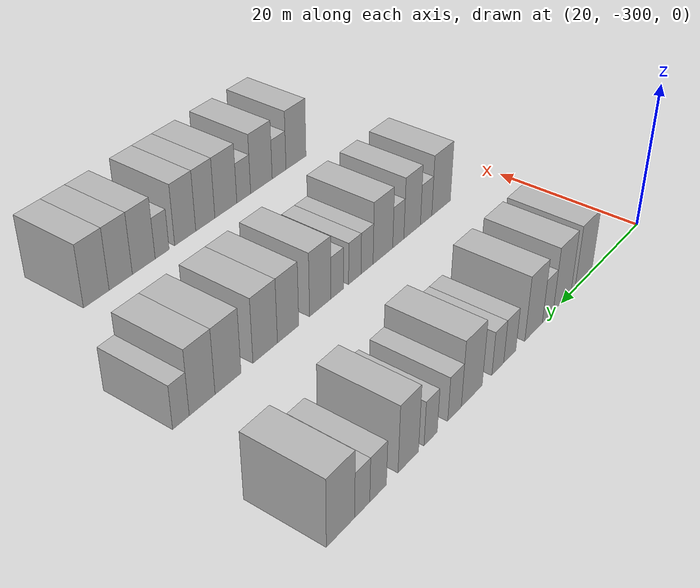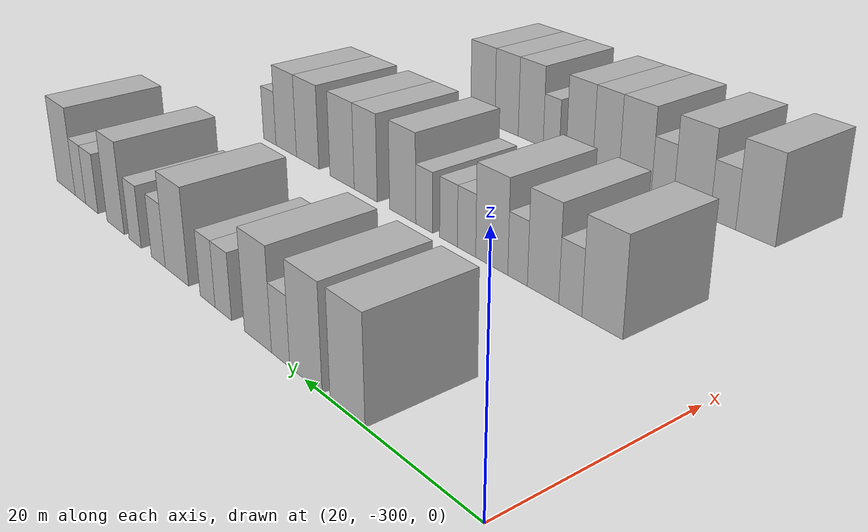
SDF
<sdf version="1.6">
 <world name="default">
  <model name="building_28">
   <static>1</static>
   <pose>25.0000 -285.4052 0 0.000000 0.000000 0.000000</pose>
   <link name="link">
    <pose>0 0 4.50 0 0 0</pose>
    <collision name="collision"><geometry><box><size>10.0000 4.2560 9.0000</size></box></geometry></collision>
    <visual name="visual">
     <cast_shadows>0</cast_shadows>
     <geometry><box><size>10.0000 4.2560 9.0000</size></box></geometry>
     <material>
      <script>
       <uri>model://HANNAS_wall/materials/scripts</uri>
       <uri>model://HANNAS_wall/materials/textures</uri>
       <name>vrc/HANNAS_wall</name>
      </script>
     </material>
    </visual>
   </link>
  </model>
  <model name="building_29">
   <static>1</static>
   <pose>25.0000 -280.1282 0 0.000000 0.000000 0.000000</pose>
   <link name="link">
    <pose>0 0 4.50 0 0 0</pose>
    <collision name="collision"><geometry><box><size>10.0000 4.2981 9.0000</size></box></geometry></collision>
    <visual name="visual">
     <cast_shadows>0</cast_shadows>
     <geometry><box><size>10.0000 4.2981 9.0000</size></box></geometry>
     <material>
      <script>
       <uri>model://HANNAS_wall/materials/scripts</uri>
       <uri>model://HANNAS_wall/materials/textures</uri>
       <name>vrc/HANNAS_wall</name>
      </script>
     </material>
    </visual>
   </link>
  </model>
  <model name="building_30">
   <static>1</static>
   <pose>25.0000 -276.6986 0 0.000000 0.000000 0.000000</pose>
   <link name="link">
    <pose>0 0 3.00 0 0 0</pose>
    <collision name="collision"><geometry><box><size>10.0000 2.5611 6.0000</size></box></geometry></collision>
    <visual name="visual">
     <cast_shadows>0</cast_shadows>
     <geometry><box><size>10.0000 2.5611 6.0000</size></box></geometry>
     <material>
      <script>
       <uri>model://HANNAS_wall/materials/scripts</uri>
       <uri>model://HANNAS_wall/materials/textures</uri>
       <name>vrc/HANNAS_wall</name>
      </script>
     </material>
    </visual>
   </link>
  </model>
  <model name="building_31">
   <static>1</static>
   <pose>25.0000 -273.4115 0 0.000000 0.000000 0.000000</pose>
   <link name="link">
    <pose>0 0 4.50 0 0 0</pose>
    <collision name="collision"><geometry><box><size>10.0000 4.0132 9.0000</size></box></geometry></collision>
    <visual name="visual">
     <cast_shadows>0</cast_shadows>
     <geometry><box><size>10.0000 4.0132 9.0000</size></box></geometry>
     <material>
      <script>
       <uri>model://HANNAS_wall/materials/scripts</uri>
       <uri>model://HANNAS_wall/materials/textures</uri>
       <name>vrc/HANNAS_wall</name>
      </script>
     </material>
    </visual>
   </link>
  </model>
  <model name="building_32">
   <static>1</static>
   <pose>25.0000 -268.0833 0 0.000000 0.000000 0.000000</pose>
   <link name="link">
    <pose>0 0 3.00 0 0 0</pose>
    <collision name="collision"><geometry><box><size>10.0000 2.6431 6.0000</size></box></geometry></collision>
    <visual name="visual">
     <cast_shadows>0</cast_shadows>
     <geometry><box><size>10.0000 2.6431 6.0000</size></box></geometry>
     <material>
      <script>
       <uri>model://HANNAS_wall/materials/scripts</uri>
       <uri>model://HANNAS_wall/materials/textures</uri>
       <name>vrc/HANNAS_wall</name>
      </script>
     </material>
    </visual>
   </link>
  </model>
  <model name="building_33">
   <static>1</static>
   <pose>25.0000 -265.5086 0 0.000000 0.000000 0.000000</pose>
   <link name="link">
    <pose>0 0 3.00 0 0 0</pose>
    <collision name="collision"><geometry><box><size>10.0000 2.5064 6.0000</size></box></geometry></collision>
    <visual name="visual">
     <cast_shadows>0</cast_shadows>
     <geometry><box><size>10.0000 2.5064 6.0000</size></box></geometry>
     <material>
      <script>
       <uri>model://HANNAS_wall/materials/scripts</uri>
       <uri>model://HANNAS_wall/materials/textures</uri>
       <name>vrc/HANNAS_wall</name>
      </script>
     </material>
    </visual>
   </link>
  </model>
  <model name="building_34">
   <static>1</static>
   <pose>25.0000 -260.1540 0 0.000000 0.000000 0.000000</pose>
   <link name="link">
    <pose>0 0 4.50 0 0 0</pose>
    <collision name="collision"><geometry><box><size>10.0000 4.2027 9.0000</size></box></geometry></collision>
    <visual name="visual">
     <cast_shadows>0</cast_shadows>
     <geometry><box><size>10.0000 4.2027 9.0000</size></box></geometry>
     <material>
      <script>
       <uri>model://HANNAS_wall/materials/scripts</uri>
       <uri>model://HANNAS_wall/materials/textures</uri>
       <name>vrc/HANNAS_wall</name>
      </script>
     </material>
    </visual>
   </link>
  </model>
  <model name="building_35">
   <static>1</static>
   <pose>25.0000 -256.7362 0 0.000000 0.000000 0.000000</pose>
   <link name="link">
    <pose>0 0 3.00 0 0 0</pose>
    <collision name="collision"><geometry><box><size>10.0000 2.6328 6.0000</size></box></geometry></collision>
    <visual name="visual">
     <cast_shadows>0</cast_shadows>
     <geometry><box><size>10.0000 2.6328 6.0000</size></box></geometry>
     <material>
      <script>
       <uri>model://HANNAS_wall/materials/scripts</uri>
       <uri>model://HANNAS_wall/materials/textures</uri>
       <name>vrc/HANNAS_wall</name>
      </script>
     </material>
    </visual>
   </link>
  </model>
  <model name="building_36">
   <static>1</static>
   <pose>25.0000 -252.1950 0 0.000000 0.000000 0.000000</pose>
   <link name="link">
    <pose>0 0 3.00 0 0 0</pose>
    <collision name="collision"><geometry><box><size>10.0000 2.4497 6.0000</size></box></geometry></collision>
    <visual name="visual">
     <cast_shadows>0</cast_shadows>
     <geometry><box><size>10.0000 2.4497 6.0000</size></box></geometry>
     <material>
      <script>
       <uri>model://HANNAS_wall/materials/scripts</uri>
       <uri>model://HANNAS_wall/materials/textures</uri>
       <name>vrc/HANNAS_wall</name>
      </script>
     </material>
    </visual>
   </link>
  </model>
  <model name="building_37">
   <static>1</static>
   <pose>25.0000 -248.1479 0 0.000000 0.000000 0.000000</pose>
   <link name="link">
    <pose>0 0 4.50 0 0 0</pose>
    <collision name="collision"><geometry><box><size>10.0000 3.6445 9.0000</size></box></geometry></collision>
    <visual name="visual">
     <cast_shadows>0</cast_shadows>
     <geometry><box><size>10.0000 3.6445 9.0000</size></box></geometry>
     <material>
      <script>
       <uri>model://HANNAS_wall/materials/scripts</uri>
       <uri>model://HANNAS_wall/materials/textures</uri>
       <name>vrc/HANNAS_wall</name>
      </script>
     </material>
    </visual>
   </link>
  </model>
  <model name="building_38">
   <static>1</static>
   <pose>25.0000 -242.9295 0 0.000000 0.000000 0.000000</pose>
   <link name="link">
    <pose>0 0 3.00 0 0 0</pose>
    <collision name="collision"><geometry><box><size>10.0000 2.7922 6.0000</size></box></geometry></collision>
    <visual name="visual">
     <cast_shadows>0</cast_shadows>
     <geometry><box><size>10.0000 2.7922 6.0000</size></box></geometry>
     <material>
      <script>
       <uri>model://HANNAS_wall/materials/scripts</uri>
       <uri>model://HANNAS_wall/materials/textures</uri>
       <name>vrc/HANNAS_wall</name>
      </script>
     </material>
    </visual>
   </link>
  </model>
  <model name="building_39">
   <static>1</static>
   <pose>25.0000 -240.2980 0 0.000000 0.000000 0.000000</pose>
   <link name="link">
    <pose>0 0 3.00 0 0 0</pose>
    <collision name="collision"><geometry><box><size>10.0000 2.4707 6.0000</size></box></geometry></collision>
    <visual name="visual">
     <cast_shadows>0</cast_shadows>
     <geometry><box><size>10.0000 2.4707 6.0000</size></box></geometry>
     <material>
      <script>
       <uri>model://HANNAS_wall/materials/scripts</uri>
       <uri>model://HANNAS_wall/materials/textures</uri>
       <name>vrc/HANNAS_wall</name>
      </script>
     </material>
    </visual>
   </link>
  </model>
  <model name="building_40">
   <static>1</static>
   <pose>25.0000 -236.8393 0 0.000000 0.000000 0.000000</pose>
   <link name="link">
    <pose>0 0 4.50 0 0 0</pose>
    <collision name="collision"><geometry><box><size>10.0000 4.4467 9.0000</size></box></geometry></collision>
    <visual name="visual">
     <cast_shadows>0</cast_shadows>
     <geometry><box><size>10.0000 4.4467 9.0000</size></box></geometry>
     <material>
      <script>
       <uri>model://HANNAS_wall/materials/scripts</uri>
       <uri>model://HANNAS_wall/materials/textures</uri>
       <name>vrc/HANNAS_wall</name>
      </script>
     </material>
    </visual>
   </link>
  </model>
  <model name="building_215">
   <static>1</static>
   <pose>47.0000 -288.3185 0 0.000000 0.000000 0.000000</pose>
   <link name="link">
    <pose>0 0 4.50 0 0 0</pose>
    <collision name="collision"><geometry><box><size>10.0000 4.4186 9.0000</size></box></geometry></collision>
    <visual name="visual">
     <cast_shadows>0</cast_shadows>
     <geometry><box><size>10.0000 4.4186 9.0000</size></box></geometry>
     <material>
      <script>
       <uri>model://HANNAS_wall/materials/scripts</uri>
       <uri>model://HANNAS_wall/materials/textures</uri>
       <name>vrc/HANNAS_wall</name>
      </script>
     </material>
    </visual>
   </link>
  </model>
  <model name="building_216">
   <static>1</static>
   <pose>47.0000 -284.7929 0 0.000000 0.000000 0.000000</pose>
   <link name="link">
    <pose>0 0 3.00 0 0 0</pose>
    <collision name="collision"><geometry><box><size>10.0000 2.6325 6.0000</size></box></geometry></collision>
    <visual name="visual">
     <cast_shadows>0</cast_shadows>
     <geometry><box><size>10.0000 2.6325 6.0000</size></box></geometry>
     <material>
      <script>
       <uri>model://HANNAS_wall/materials/scripts</uri>
       <uri>model://HANNAS_wall/materials/textures</uri>
       <name>vrc/HANNAS_wall</name>
      </script>
     </material>
    </visual>
   </link>
  </model>
  <model name="building_217">
   <static>1</static>
   <pose>47.0000 -281.6068 0 0.000000 0.000000 0.000000</pose>
   <link name="link">
    <pose>0 0 4.50 0 0 0</pose>
    <collision name="collision"><geometry><box><size>10.0000 3.7397 9.0000</size></box></geometry></collision>
    <visual name="visual">
     <cast_shadows>0</cast_shadows>
     <geometry><box><size>10.0000 3.7397 9.0000</size></box></geometry>
     <material>
      <script>
       <uri>model://HANNAS_wall/materials/scripts</uri>
       <uri>model://HANNAS_wall/materials/textures</uri>
       <name>vrc/HANNAS_wall</name>
      </script>
     </material>
    </visual>
   </link>
  </model>
  <model name="building_218">
   <static>1</static>
   <pose>47.0000 -278.5129 0 0.000000 0.000000 0.000000</pose>
   <link name="link">
    <pose>0 0 3.00 0 0 0</pose>
    <collision name="collision"><geometry><box><size>10.0000 2.4482 6.0000</size></box></geometry></collision>
    <visual name="visual">
     <cast_shadows>0</cast_shadows>
     <geometry><box><size>10.0000 2.4482 6.0000</size></box></geometry>
     <material>
      <script>
       <uri>model://HANNAS_wall/materials/scripts</uri>
       <uri>model://HANNAS_wall/materials/textures</uri>
       <name>vrc/HANNAS_wall</name>
      </script>
     </material>
    </visual>
   </link>
  </model>
  <model name="building_219">
   <static>1</static>
   <pose>47.0000 -275.1874 0 0.000000 0.000000 0.000000</pose>
   <link name="link">
    <pose>0 0 4.50 0 0 0</pose>
    <collision name="collision"><geometry><box><size>10.0000 4.2028 9.0000</size></box></geometry></collision>
    <visual name="visual">
     <cast_shadows>0</cast_shadows>
     <geometry><box><size>10.0000 4.2028 9.0000</size></box></geometry>
     <material>
      <script>
       <uri>model://HANNAS_wall/materials/scripts</uri>
       <uri>model://HANNAS_wall/materials/textures</uri>
       <name>vrc/HANNAS_wall</name>
      </script>
     </material>
    </visual>
   </link>
  </model>
  <model name="building_220">
   <static>1</static>
   <pose>47.0000 -271.8371 0 0.000000 0.000000 0.000000</pose>
   <link name="link">
    <pose>0 0 3.00 0 0 0</pose>
    <collision name="collision"><geometry><box><size>10.0000 2.4978 6.0000</size></box></geometry></collision>
    <visual name="visual">
     <cast_shadows>0</cast_shadows>
     <geometry><box><size>10.0000 2.4978 6.0000</size></box></geometry>
     <material>
      <script>
       <uri>model://HANNAS_wall/materials/scripts</uri>
       <uri>model://HANNAS_wall/materials/textures</uri>
       <name>vrc/HANNAS_wall</name>
      </script>
     </material>
    </visual>
   </link>
  </model>
  <model name="building_221">
   <static>1</static>
   <pose>47.0000 -269.3279 0 0.000000 0.000000 0.000000</pose>
   <link name="link">
    <pose>0 0 3.00 0 0 0</pose>
    <collision name="collision"><geometry><box><size>10.0000 2.5206 6.0000</size></box></geometry></collision>
    <visual name="visual">
     <cast_shadows>0</cast_shadows>
     <geometry><box><size>10.0000 2.5206 6.0000</size></box></geometry>
     <material>
      <script>
       <uri>model://HANNAS_wall/materials/scripts</uri>
       <uri>model://HANNAS_wall/materials/textures</uri>
       <name>vrc/HANNAS_wall</name>
      </script>
     </material>
    </visual>
   </link>
  </model>
  <model name="building_222">
   <static>1</static>
   <pose>47.0000 -265.8145 0 0.000000 0.000000 0.000000</pose>
   <link name="link">
    <pose>0 0 3.00 0 0 0</pose>
    <collision name="collision"><geometry><box><size>10.0000 2.5062 6.0000</size></box></geometry></collision>
    <visual name="visual">
     <cast_shadows>0</cast_shadows>
     <geometry><box><size>10.0000 2.5062 6.0000</size></box></geometry>
     <material>
      <script>
       <uri>model://HANNAS_wall/materials/scripts</uri>
       <uri>model://HANNAS_wall/materials/textures</uri>
       <name>vrc/HANNAS_wall</name>
      </script>
     </material>
    </visual>
   </link>
  </model>
  <model name="building_223">
   <static>1</static>
   <pose>47.0000 -262.5341 0 0.000000 0.000000 0.000000</pose>
   <link name="link">
    <pose>0 0 4.50 0 0 0</pose>
    <collision name="collision"><geometry><box><size>10.0000 4.0547 9.0000</size></box></geometry></collision>
    <visual name="visual">
     <cast_shadows>0</cast_shadows>
     <geometry><box><size>10.0000 4.0547 9.0000</size></box></geometry>
     <material>
      <script>
       <uri>model://HANNAS_wall/materials/scripts</uri>
       <uri>model://HANNAS_wall/materials/textures</uri>
       <name>vrc/HANNAS_wall</name>
      </script>
     </material>
    </visual>
   </link>
  </model>
  <model name="building_224">
   <static>1</static>
   <pose>47.0000 -256.5810 0 0.000000 0.000000 0.000000</pose>
   <link name="link">
    <pose>0 0 4.50 0 0 0</pose>
    <collision name="collision"><geometry><box><size>10.0000 3.8515 9.0000</size></box></geometry></collision>
    <visual name="visual">
     <cast_shadows>0</cast_shadows>
     <geometry><box><size>10.0000 3.8515 9.0000</size></box></geometry>
     <material>
      <script>
       <uri>model://HANNAS_wall/materials/scripts</uri>
       <uri>model://HANNAS_wall/materials/textures</uri>
       <name>vrc/HANNAS_wall</name>
      </script>
     </material>
    </visual>
   </link>
  </model>
  <model name="building_225">
   <static>1</static>
   <pose>47.0000 -252.5241 0 0.000000 0.000000 0.000000</pose>
   <link name="link">
    <pose>0 0 4.50 0 0 0</pose>
    <collision name="collision"><geometry><box><size>10.0000 4.2624 9.0000</size></box></geometry></collision>
    <visual name="visual">
     <cast_shadows>0</cast_shadows>
     <geometry><box><size>10.0000 4.2624 9.0000</size></box></geometry>
     <material>
      <script>
       <uri>model://HANNAS_wall/materials/scripts</uri>
       <uri>model://HANNAS_wall/materials/textures</uri>
       <name>vrc/HANNAS_wall</name>
      </script>
     </material>
    </visual>
   </link>
  </model>
  <model name="building_226">
   <static>1</static>
   <pose>47.0000 -246.2687 0 0.000000 0.000000 0.000000</pose>
   <link name="link">
    <pose>0 0 4.50 0 0 0</pose>
    <collision name="collision"><geometry><box><size>10.0000 4.2484 9.0000</size></box></geometry></collision>
    <visual name="visual">
     <cast_shadows>0</cast_shadows>
     <geometry><box><size>10.0000 4.2484 9.0000</size></box></geometry>
     <material>
      <script>
       <uri>model://HANNAS_wall/materials/scripts</uri>
       <uri>model://HANNAS_wall/materials/textures</uri>
       <name>vrc/HANNAS_wall</name>
      </script>
     </material>
    </visual>
   </link>
  </model>
  <model name="building_227">
   <static>1</static>
   <pose>47.0000 -242.1153 0 0.000000 0.000000 0.000000</pose>
   <link name="link">
    <pose>0 0 4.50 0 0 0</pose>
    <collision name="collision"><geometry><box><size>10.0000 4.0583 9.0000</size></box></geometry></collision>
    <visual name="visual">
     <cast_shadows>0</cast_shadows>
     <geometry><box><size>10.0000 4.0583 9.0000</size></box></geometry>
     <material>
      <script>
       <uri>model://HANNAS_wall/materials/scripts</uri>
       <uri>model://HANNAS_wall/materials/textures</uri>
       <name>vrc/HANNAS_wall</name>
      </script>
     </material>
    </visual>
   </link>
  </model>
  <model name="building_228">
   <static>1</static>
   <pose>47.0000 -238.8223 0 0.000000 0.000000 0.000000</pose>
   <link name="link">
    <pose>0 0 3.00 0 0 0</pose>
    <collision name="collision"><geometry><box><size>10.0000 2.5276 6.0000</size></box></geometry></collision>
    <visual name="visual">
     <cast_shadows>0</cast_shadows>
     <geometry><box><size>10.0000 2.5276 6.0000</size></box></geometry>
     <material>
      <script>
       <uri>model://HANNAS_wall/materials/scripts</uri>
       <uri>model://HANNAS_wall/materials/textures</uri>
       <name>vrc/HANNAS_wall</name>
      </script>
     </material>
    </visual>
   </link>
  </model>
  <model name="building_407">
   <static>1</static>
   <pose>69.0000 -285.9024 0 0.000000 0.000000 0.000000</pose>
   <link name="link">
    <pose>0 0 4.50 0 0 0</pose>
    <collision name="collision"><geometry><box><size>10.0000 4.3956 9.0000</size></box></geometry></collision>
    <visual name="visual">
     <cast_shadows>0</cast_shadows>
     <geometry><box><size>10.0000 4.3956 9.0000</size></box></geometry>
     <material>
      <script>
       <uri>model://HANNAS_wall/materials/scripts</uri>
       <uri>model://HANNAS_wall/materials/textures</uri>
       <name>vrc/HANNAS_wall</name>
      </script>
     </material>
    </visual>
   </link>
  </model>
  <model name="building_408">
   <static>1</static>
   <pose>69.0000 -282.2194 0 0.000000 0.000000 0.000000</pose>
   <link name="link">
    <pose>0 0 3.00 0 0 0</pose>
    <collision name="collision"><geometry><box><size>10.0000 2.9702 6.0000</size></box></geometry></collision>
    <visual name="visual">
     <cast_shadows>0</cast_shadows>
     <geometry><box><size>10.0000 2.9702 6.0000</size></box></geometry>
     <material>
      <script>
       <uri>model://HANNAS_wall/materials/scripts</uri>
       <uri>model://HANNAS_wall/materials/textures</uri>
       <name>vrc/HANNAS_wall</name>
      </script>
     </material>
    </visual>
   </link>
  </model>
  <model name="building_409">
   <static>1</static>
   <pose>69.0000 -278.4946 0 0.000000 0.000000 0.000000</pose>
   <link name="link">
    <pose>0 0 4.50 0 0 0</pose>
    <collision name="collision"><geometry><box><size>10.0000 4.4795 9.0000</size></box></geometry></collision>
    <visual name="visual">
     <cast_shadows>0</cast_shadows>
     <geometry><box><size>10.0000 4.4795 9.0000</size></box></geometry>
     <material>
      <script>
       <uri>model://HANNAS_wall/materials/scripts</uri>
       <uri>model://HANNAS_wall/materials/textures</uri>
       <name>vrc/HANNAS_wall</name>
      </script>
     </material>
    </visual>
   </link>
  </model>
  <model name="building_410">
   <static>1</static>
   <pose>69.0000 -274.8550 0 0.000000 0.000000 0.000000</pose>
   <link name="link">
    <pose>0 0 3.00 0 0 0</pose>
    <collision name="collision"><geometry><box><size>10.0000 2.7996 6.0000</size></box></geometry></collision>
    <visual name="visual">
     <cast_shadows>0</cast_shadows>
     <geometry><box><size>10.0000 2.7996 6.0000</size></box></geometry>
     <material>
      <script>
       <uri>model://HANNAS_wall/materials/scripts</uri>
       <uri>model://HANNAS_wall/materials/textures</uri>
       <name>vrc/HANNAS_wall</name>
      </script>
     </material>
    </visual>
   </link>
  </model>
  <model name="building_411">
   <static>1</static>
   <pose>69.0000 -271.2957 0 0.000000 0.000000 0.000000</pose>
   <link name="link">
    <pose>0 0 4.50 0 0 0</pose>
    <collision name="collision"><geometry><box><size>10.0000 4.3189 9.0000</size></box></geometry></collision>
    <visual name="visual">
     <cast_shadows>0</cast_shadows>
     <geometry><box><size>10.0000 4.3189 9.0000</size></box></geometry>
     <material>
      <script>
       <uri>model://HANNAS_wall/materials/scripts</uri>
       <uri>model://HANNAS_wall/materials/textures</uri>
       <name>vrc/HANNAS_wall</name>
      </script>
     </material>
    </visual>
   </link>
  </model>
  <model name="building_412">
   <static>1</static>
   <pose>69.0000 -267.3187 0 0.000000 0.000000 0.000000</pose>
   <link name="link">
    <pose>0 0 4.50 0 0 0</pose>
    <collision name="collision"><geometry><box><size>10.0000 3.6351 9.0000</size></box></geometry></collision>
    <visual name="visual">
     <cast_shadows>0</cast_shadows>
     <geometry><box><size>10.0000 3.6351 9.0000</size></box></geometry>
     <material>
      <script>
       <uri>model://HANNAS_wall/materials/scripts</uri>
       <uri>model://HANNAS_wall/materials/textures</uri>
       <name>vrc/HANNAS_wall</name>
      </script>
     </material>
    </visual>
   </link>
  </model>
  <model name="building_413">
   <static>1</static>
   <pose>69.0000 -263.5559 0 0.000000 0.000000 0.000000</pose>
   <link name="link">
    <pose>0 0 4.50 0 0 0</pose>
    <collision name="collision"><geometry><box><size>10.0000 3.8904 9.0000</size></box></geometry></collision>
    <visual name="visual">
     <cast_shadows>0</cast_shadows>
     <geometry><box><size>10.0000 3.8904 9.0000</size></box></geometry>
     <material>
      <script>
       <uri>model://HANNAS_wall/materials/scripts</uri>
       <uri>model://HANNAS_wall/materials/textures</uri>
       <name>vrc/HANNAS_wall</name>
      </script>
     </material>
    </visual>
   </link>
  </model>
  <model name="building_414">
   <static>1</static>
   <pose>69.0000 -259.3690 0 0.000000 0.000000 0.000000</pose>
   <link name="link">
    <pose>0 0 3.00 0 0 0</pose>
    <collision name="collision"><geometry><box><size>10.0000 2.4835 6.0000</size></box></geometry></collision>
    <visual name="visual">
     <cast_shadows>0</cast_shadows>
     <geometry><box><size>10.0000 2.4835 6.0000</size></box></geometry>
     <material>
      <script>
       <uri>model://HANNAS_wall/materials/scripts</uri>
       <uri>model://HANNAS_wall/materials/textures</uri>
       <name>vrc/HANNAS_wall</name>
      </script>
     </material>
    </visual>
   </link>
  </model>
  <model name="building_415">
   <static>1</static>
   <pose>69.0000 -256.1561 0 0.000000 0.000000 0.000000</pose>
   <link name="link">
    <pose>0 0 4.50 0 0 0</pose>
    <collision name="collision"><geometry><box><size>10.0000 3.9422 9.0000</size></box></geometry></collision>
    <visual name="visual">
     <cast_shadows>0</cast_shadows>
     <geometry><box><size>10.0000 3.9422 9.0000</size></box></geometry>
     <material>
      <script>
       <uri>model://HANNAS_wall/materials/scripts</uri>
       <uri>model://HANNAS_wall/materials/textures</uri>
       <name>vrc/HANNAS_wall</name>
      </script>
     </material>
    </visual>
   </link>
  </model>
  <model name="building_416">
   <static>1</static>
   <pose>69.0000 -252.2458 0 0.000000 0.000000 0.000000</pose>
   <link name="link">
    <pose>0 0 4.50 0 0 0</pose>
    <collision name="collision"><geometry><box><size>10.0000 3.8785 9.0000</size></box></geometry></collision>
    <visual name="visual">
     <cast_shadows>0</cast_shadows>
     <geometry><box><size>10.0000 3.8785 9.0000</size></box></geometry>
     <material>
      <script>
       <uri>model://HANNAS_wall/materials/scripts</uri>
       <uri>model://HANNAS_wall/materials/textures</uri>
       <name>vrc/HANNAS_wall</name>
      </script>
     </material>
    </visual>
   </link>
  </model>
  <model name="building_417">
   <static>1</static>
   <pose>69.0000 -248.2314 0 0.000000 0.000000 0.000000</pose>
   <link name="link">
    <pose>0 0 4.50 0 0 0</pose>
    <collision name="collision"><geometry><box><size>10.0000 4.1504 9.0000</size></box></geometry></collision>
    <visual name="visual">
     <cast_shadows>0</cast_shadows>
     <geometry><box><size>10.0000 4.1504 9.0000</size></box></geometry>
     <material>
      <script>
       <uri>model://HANNAS_wall/materials/scripts</uri>
       <uri>model://HANNAS_wall/materials/textures</uri>
       <name>vrc/HANNAS_wall</name>
      </script>
     </material>
    </visual>
   </link>
  </model>
 </world>
</sdf>
